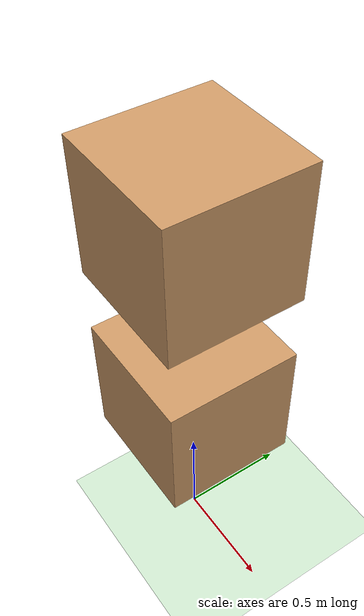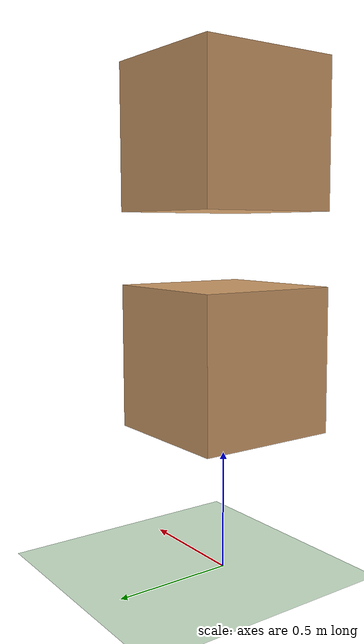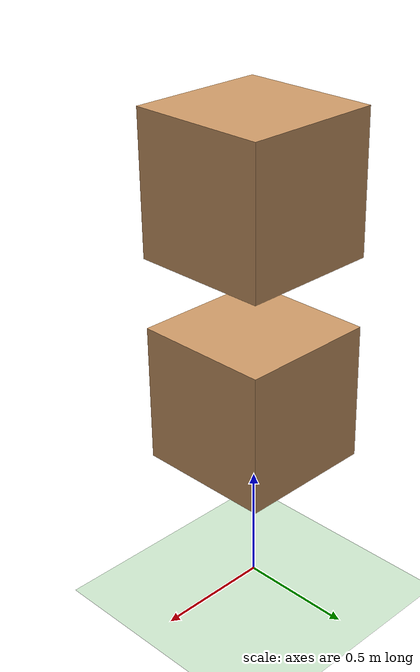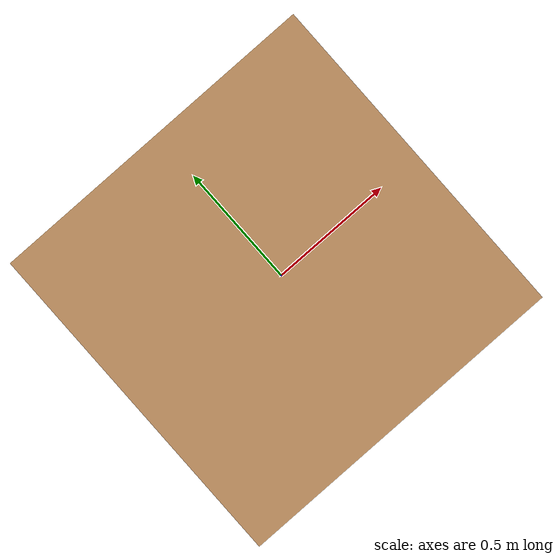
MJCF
<mujoco model="SLIP">
  <compiler inertiafromgeom="false" angle="degree" />

  <default>
    <joint limited='true' damping='1' armature='1' />
    <geom contype='7' conaffinity='7' condim='1' rgba='0.8 0.6 .4 1' margin="0.001" solref=".005 1" solimp=".99 .98 .01" material="geom" />
    <motor ctrlrange='-.4 .4' ctrllimited='true' />
  </default>

  <option timestep="0.001" integrator="Euler" gravity="0 0 -9.806"/>
  <asset>
    <texture type="skybox" builtin="gradient" width="100" height="100" rgb1="1 1 1" rgb2="0 0 0" />
    <texture name="texgeom" type="cube" builtin="flat" mark="cross" width="127" height="1278" rgb1="0.8 0.6 0.4" rgb2="0.8 0.6 0.4" markrgb="1 1 1" random="0.01" />
    <texture name="texplane" type="2d" builtin="checker" rgb1="0 0 0" rgb2="0.8 0.8 0.8" width="100" height="100" />
    <material name='MatPlane' texture="texplane" shininess="1" texrepeat="60 60" specular="1"  reflectance="0.5" />
    <material name='geom' texture="texgeom" texuniform="true" />
  </asset>

  <worldbody>
    <light directional="true" cutoff="100" exponent="1" diffuse="1 1 1" specular=".1 .1 .1" pos="0 0 1.3" dir="-0 0 -1.3" />
    <geom name='floor' contype='7' conaffinity='7' pos='0 0 0' size='40 40 40' type='plane' rgba='0.8 0.9 0.8 1' condim='3' friction="2.0" material="MatPlane"/>

    <body name="block1" pos="0 0 1.8">
      <joint name='rootx' type='slide' axis='1 0 0' pos='0 0 0' limited='false' damping='0' armature='0' stiffness='0' />
      <joint name='rootz' type='slide' axis='0 0 1' pos='0 0 0' limited='false' damping='0' armature='0' stiffness='0' />
      <geom name="block1_geom" type="box" size="0.3 0.3 0.3" friction="0.9"/>
      <inertial pos='0 0 0' mass='10' diaginertia = '0.2 0.2 0.2'/>

              <body name="block2" pos="0 0 -0.9">
                  <geom name="block2_geom" type="box" size="0.3 0.3 0.3" friction="0.9"/>
                  <inertial pos='0 0 0' mass='10' diaginertia = '0.2 0.2 0.2'/>
                  <joint name='spring' type='slide' axis='0 0 1' pos='0 0 0' limited='true' range='-0.2 0.2' damping='100' armature='0' stiffness='10000'/>
                  <site name="b2_site1" type="sphere" pos="-0.25 0 -0.3" size="0.015"/>
                  <site name="b2_site2" type="sphere" pos="0.25 0 -0.3" size="0.015"/>

              </body> <!--end block 2 -->

    </body> <!--end block 1 -->

  </worldbody>

</mujoco>
